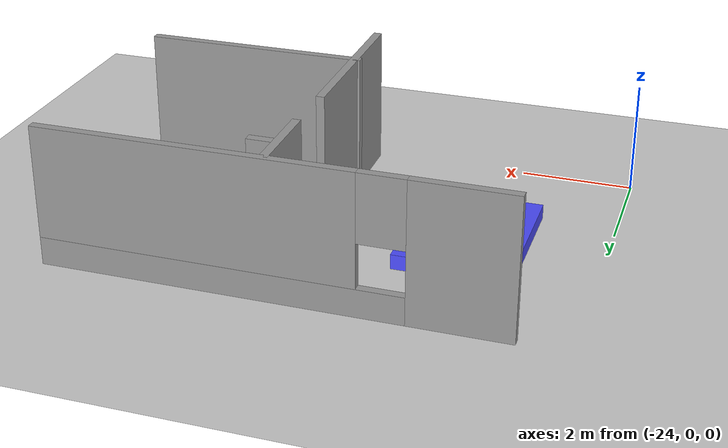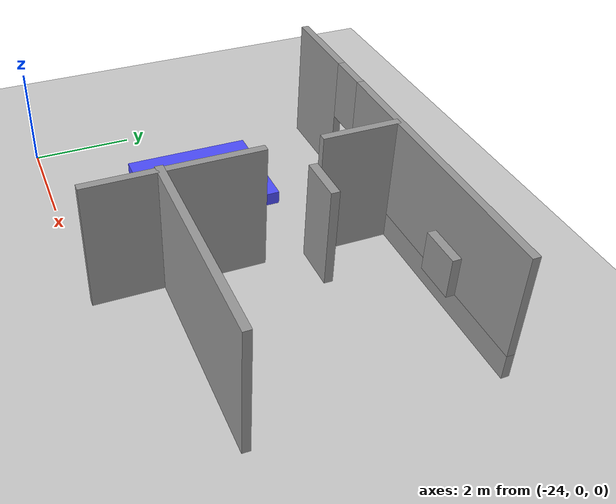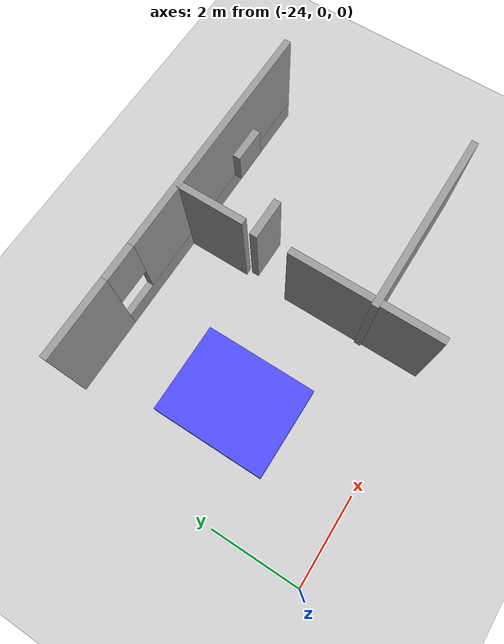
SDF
<sdf version="1.7">
 <world name="default">
  <model name="ground_plane">
   <static>1</static>
   <link name="link">
    <collision name="collision">
     <geometry><plane><normal>0 0 1</normal><size>100 100</size></plane></geometry>
     <surface><friction><ode><mu>100</mu><mu2>50</mu2></ode></friction></surface>
    </collision>
    <visual name="visual">
     <cast_shadows>0</cast_shadows>
     <geometry><plane><normal>0 0 1</normal><size>100 100</size></plane></geometry>
     <material>
      <script><uri>file://media/materials/scripts/gazebo.material</uri><name>Gazebo/Grey</name></script>
     </material>
    </visual>
   </link>
  </model>
  <model name="bed_master_bedroom">
   <link name="link">
    <pose>0.100094 0.123025 0 0 -0 0</pose>
    <inertial>
     <mass>1.44755</mass>
     <inertia>
      <ixx>0.803455</ixx>
      <ixy>0</ixy>
      <ixz>0</ixz>
      <iyy>0.510804</iyy>
      <iyz>0</iyz>
      <izz>1.29705</izz>
     </inertia>
    </inertial>
    <visual name="visual">
     <geometry><box><size>2.04039 2.56695 0.267057</size></box></geometry>
     <material>
      <script><name>Gazebo/Grey</name><uri>file://media/materials/scripts/gazebo.material</uri></script>
      <shader type="pixel"><normal_map>__default__</normal_map></shader>
      <ambient>0.3 0.3 1 0</ambient>
      <diffuse>0.7 0.7 0.7 1</diffuse>
      <specular>0.01 0.01 0.01 1</specular>
      <emissive>0 0 0 1</emissive>
     </material>
    </visual>
    <collision name="collision">
     <geometry><box><size>2.04039 2.56695 0.267057</size></box></geometry>
     <surface>
      <friction>
       <ode><mu>1</mu><mu2>1</mu2><fdir1>0 0 0</fdir1><slip1>0</slip1><slip2>0</slip2></ode>
       <torsional>
        <coefficient>1</coefficient>
        <patch_radius>0</patch_radius>
        <surface_radius>0</surface_radius>
        <use_patch_radius>1</use_patch_radius>
        <ode><slip>0</slip></ode>
       </torsional>
      </friction>
      <bounce><restitution_coefficient>0</restitution_coefficient><threshold>1e+06</threshold></bounce>
      <contact>
       <collide_without_contact>0</collide_without_contact>
       <collide_without_contact_bitmask>1</collide_without_contact_bitmask>
       <collide_bitmask>1</collide_bitmask>
       <ode>
        <soft_cfm>0</soft_cfm>
        <soft_erp>0.2</soft_erp>
        <kp>1e+13</kp>
        <kd>1</kd>
        <max_vel>0.01</max_vel>
        <min_depth>0</min_depth>
       </ode>
       <bullet>
        <split_impulse>1</split_impulse>
        <split_impulse_penetration_threshold>-0.01</split_impulse_penetration_threshold>
        <soft_cfm>0</soft_cfm>
        <soft_erp>0.2</soft_erp>
        <kp>1e+13</kp>
        <kd>1</kd>
       </bullet>
      </contact>
     </surface>
    </collision>
   </link>
   <static>0</static>
   <pose>-21.7782 2.86422 0.133528 0 -0 0</pose>
  </model>
  <model name="Building">
   <link name="Door_1">
    <pose>-6.95469 3.88732 0 0 -0 0</pose>
    <visual name="Door_1_Visual">
     <pose>0 0 1 0 -0 0</pose>
     <geometry><box><size>0.9 0.17 2</size></box></geometry>
     <material>
      <script><uri>file://media/materials/scripts/gazebo.material</uri><name>Gazebo/Grey</name></script>
      <shader type="pixel"/>
      <ambient>0.3 0.3 0.3 1</ambient>
      <diffuse>0.7 0.7 0.7 1</diffuse>
      <specular>0.01 0.01 0.01 1</specular>
      <emissive>0 0 0 1</emissive>
     </material>
    </visual>
    <collision name="Door_1_Collision">
     <pose>0 0 1 0 -0 0</pose>
     <geometry><box><size>0.9 0.17 2</size></box></geometry>
     <surface>
      <friction>
       <ode><mu>1</mu><mu2>1</mu2><fdir1>0 0 0</fdir1><slip1>0</slip1><slip2>0</slip2></ode>
       <torsional>
        <coefficient>1</coefficient>
        <patch_radius>0</patch_radius>
        <surface_radius>0</surface_radius>
        <use_patch_radius>1</use_patch_radius>
        <ode><slip>0</slip></ode>
       </torsional>
      </friction>
      <bounce><restitution_coefficient>0</restitution_coefficient><threshold>1e+06</threshold></bounce>
      <contact>
       <collide_without_contact>0</collide_without_contact>
       <collide_without_contact_bitmask>1</collide_without_contact_bitmask>
       <collide_bitmask>1</collide_bitmask>
       <ode>
        <soft_cfm>0</soft_cfm>
        <soft_erp>0.2</soft_erp>
        <kp>1e+13</kp>
        <kd>1</kd>
        <max_vel>0.01</max_vel>
        <min_depth>0</min_depth>
       </ode>
       <bullet>
        <split_impulse>1</split_impulse>
        <split_impulse_penetration_threshold>-0.01</split_impulse_penetration_threshold>
        <soft_cfm>0</soft_cfm>
        <soft_erp>0.2</soft_erp>
        <kp>1e+13</kp>
        <kd>1</kd>
       </bullet>
      </contact>
     </surface>
    </collision>
   </link>
   <link name="Wall_0">
    <pose>-7.4798 5.546 0 0 -0 0</pose>
    <visual name="Wall_0_Visual_0">
     <pose>-3.13088 0 1.25 0 -0 0</pose>
     <geometry><box><size>1.73823 0.15 2.5</size></box></geometry>
     <material>
      <script><uri>file://media/materials/scripts/gazebo.material</uri><name>Gazebo/Grey</name></script>
      <ambient>1 1 1 1</ambient>
      <shader type="pixel"/>
      <diffuse>0.7 0.7 0.7 1</diffuse>
      <specular>0.01 0.01 0.01 1</specular>
      <emissive>0 0 0 1</emissive>
     </material>
     <meta><layer>0</layer></meta>
    </visual>
    <visual name="Wall_0_Visual_1">
     <pose>0.869118 0 0.25 0 -0 0</pose>
     <geometry><box><size>6.26176 0.15 0.5</size></box></geometry>
     <material>
      <script><uri>file://media/materials/scripts/gazebo.material</uri><name>Gazebo/Grey</name></script>
      <ambient>1 1 1 1</ambient>
      <shader type="pixel"/>
      <diffuse>0.7 0.7 0.7 1</diffuse>
      <specular>0.01 0.01 0.01 1</specular>
      <emissive>0 0 0 1</emissive>
     </material>
     <meta><layer>0</layer></meta>
    </visual>
    <visual name="Wall_0_Visual_2">
     <pose>1.26912 0 1.5 0 -0 0</pose>
     <geometry><box><size>5.46176 0.15 2</size></box></geometry>
     <material>
      <script><uri>file://media/materials/scripts/gazebo.material</uri><name>Gazebo/Grey</name></script>
      <ambient>1 1 1 1</ambient>
      <shader type="pixel"/>
      <diffuse>0.7 0.7 0.7 1</diffuse>
      <specular>0.01 0.01 0.01 1</specular>
      <emissive>0 0 0 1</emissive>
     </material>
     <meta><layer>0</layer></meta>
    </visual>
    <visual name="Wall_0_Visual_3">
     <pose>-1.86176 0 1.9 0 -0 0</pose>
     <geometry><box><size>0.8 0.15 1.2</size></box></geometry>
     <material>
      <script><uri>file://media/materials/scripts/gazebo.material</uri><name>Gazebo/Grey</name></script>
      <ambient>1 1 1 1</ambient>
      <shader type="pixel"/>
      <diffuse>0.7 0.7 0.7 1</diffuse>
      <specular>0.01 0.01 0.01 1</specular>
      <emissive>0 0 0 1</emissive>
     </material>
     <meta><layer>0</layer></meta>
    </visual>
    <collision name="Wall_0_Collision_0">
     <pose>-3.13088 0 1.25 0 -0 0</pose>
     <geometry><box><size>1.73823 0.15 2.5</size></box></geometry>
     <surface>
      <friction>
       <ode><mu>1</mu><mu2>1</mu2><fdir1>0 0 0</fdir1><slip1>0</slip1><slip2>0</slip2></ode>
       <torsional>
        <coefficient>1</coefficient>
        <patch_radius>0</patch_radius>
        <surface_radius>0</surface_radius>
        <use_patch_radius>1</use_patch_radius>
        <ode><slip>0</slip></ode>
       </torsional>
      </friction>
      <bounce><restitution_coefficient>0</restitution_coefficient><threshold>1e+06</threshold></bounce>
      <contact>
       <collide_without_contact>0</collide_without_contact>
       <collide_without_contact_bitmask>1</collide_without_contact_bitmask>
       <collide_bitmask>1</collide_bitmask>
       <ode>
        <soft_cfm>0</soft_cfm>
        <soft_erp>0.2</soft_erp>
        <kp>1e+13</kp>
        <kd>1</kd>
        <max_vel>0.01</max_vel>
        <min_depth>0</min_depth>
       </ode>
       <bullet>
        <split_impulse>1</split_impulse>
        <split_impulse_penetration_threshold>-0.01</split_impulse_penetration_threshold>
        <soft_cfm>0</soft_cfm>
        <soft_erp>0.2</soft_erp>
        <kp>1e+13</kp>
        <kd>1</kd>
       </bullet>
      </contact>
     </surface>
    </collision>
    <collision name="Wall_0_Collision_1">
     <pose>0.869118 0 0.25 0 -0 0</pose>
     <geometry><box><size>6.26176 0.15 0.5</size></box></geometry>
     <surface>
      <friction>
       <ode><mu>1</mu><mu2>1</mu2><fdir1>0 0 0</fdir1><slip1>0</slip1><slip2>0</slip2></ode>
       <torsional>
        <coefficient>1</coefficient>
        <patch_radius>0</patch_radius>
        <surface_radius>0</surface_radius>
        <use_patch_radius>1</use_patch_radius>
        <ode><slip>0</slip></ode>
       </torsional>
      </friction>
      <bounce><restitution_coefficient>0</restitution_coefficient><threshold>1e+06</threshold></bounce>
      <contact>
       <collide_without_contact>0</collide_without_contact>
       <collide_without_contact_bitmask>1</collide_without_contact_bitmask>
       <collide_bitmask>1</collide_bitmask>
       <ode>
        <soft_cfm>0</soft_cfm>
        <soft_erp>0.2</soft_erp>
        <kp>1e+13</kp>
        <kd>1</kd>
        <max_vel>0.01</max_vel>
        <min_depth>0</min_depth>
       </ode>
       <bullet>
        <split_impulse>1</split_impulse>
        <split_impulse_penetration_threshold>-0.01</split_impulse_penetration_threshold>
        <soft_cfm>0</soft_cfm>
        <soft_erp>0.2</soft_erp>
        <kp>1e+13</kp>
        <kd>1</kd>
       </bullet>
      </contact>
     </surface>
    </collision>
    <collision name="Wall_0_Collision_2">
     <pose>1.26912 0 1.5 0 -0 0</pose>
     <geometry><box><size>5.46176 0.15 2</size></box></geometry>
     <surface>
      <friction>
       <ode><mu>1</mu><mu2>1</mu2><fdir1>0 0 0</fdir1><slip1>0</slip1><slip2>0</slip2></ode>
       <torsional>
        <coefficient>1</coefficient>
        <patch_radius>0</patch_radius>
        <surface_radius>0</surface_radius>
        <use_patch_radius>1</use_patch_radius>
        <ode><slip>0</slip></ode>
       </torsional>
      </friction>
      <bounce><restitution_coefficient>0</restitution_coefficient><threshold>1e+06</threshold></bounce>
      <contact>
       <collide_without_contact>0</collide_without_contact>
       <collide_without_contact_bitmask>1</collide_without_contact_bitmask>
       <collide_bitmask>1</collide_bitmask>
       <ode>
        <soft_cfm>0</soft_cfm>
        <soft_erp>0.2</soft_erp>
        <kp>1e+13</kp>
        <kd>1</kd>
        <max_vel>0.01</max_vel>
        <min_depth>0</min_depth>
       </ode>
       <bullet>
        <split_impulse>1</split_impulse>
        <split_impulse_penetration_threshold>-0.01</split_impulse_penetration_threshold>
        <soft_cfm>0</soft_cfm>
        <soft_erp>0.2</soft_erp>
        <kp>1e+13</kp>
        <kd>1</kd>
       </bullet>
      </contact>
     </surface>
    </collision>
    <collision name="Wall_0_Collision_3">
     <pose>-1.86176 0 1.9 0 -0 0</pose>
     <geometry><box><size>0.8 0.15 1.2</size></box></geometry>
     <surface>
      <friction>
       <ode><mu>1</mu><mu2>1</mu2><fdir1>0 0 0</fdir1><slip1>0</slip1><slip2>0</slip2></ode>
       <torsional>
        <coefficient>1</coefficient>
        <patch_radius>0</patch_radius>
        <surface_radius>0</surface_radius>
        <use_patch_radius>1</use_patch_radius>
        <ode><slip>0</slip></ode>
       </torsional>
      </friction>
      <bounce><restitution_coefficient>0</restitution_coefficient><threshold>1e+06</threshold></bounce>
      <contact>
       <collide_without_contact>0</collide_without_contact>
       <collide_without_contact_bitmask>1</collide_without_contact_bitmask>
       <collide_bitmask>1</collide_bitmask>
       <ode>
        <soft_cfm>0</soft_cfm>
        <soft_erp>0.2</soft_erp>
        <kp>1e+13</kp>
        <kd>1</kd>
        <max_vel>0.01</max_vel>
        <min_depth>0</min_depth>
       </ode>
       <bullet>
        <split_impulse>1</split_impulse>
        <split_impulse_penetration_threshold>-0.01</split_impulse_penetration_threshold>
        <soft_cfm>0</soft_cfm>
        <soft_erp>0.2</soft_erp>
        <kp>1e+13</kp>
        <kd>1</kd>
       </bullet>
      </contact>
     </surface>
    </collision>
   </link>
   <link name="Wall_10">
    <pose>-7.44016 4.79009 0 0 0 -1.5708</pose>
    <visual name="Wall_10_Visual">
     <pose>0 0 1.25 0 -0 0</pose>
     <geometry><box><size>1.5 0.15 2.5</size></box></geometry>
     <material>
      <script><uri>file://media/materials/scripts/gazebo.material</uri><name>Gazebo/Grey</name></script>
      <ambient>1 1 1 1</ambient>
      <shader type="pixel"/>
      <diffuse>0.7 0.7 0.7 1</diffuse>
      <specular>0.01 0.01 0.01 1</specular>
      <emissive>0 0 0 1</emissive>
     </material>
     <meta><layer>0</layer></meta>
    </visual>
    <collision name="Wall_10_Collision">
     <pose>0 0 1.25 0 -0 0</pose>
     <geometry><box><size>1.5 0.15 2.5</size></box></geometry>
     <surface>
      <friction>
       <ode><mu>1</mu><mu2>1</mu2><fdir1>0 0 0</fdir1><slip1>0</slip1><slip2>0</slip2></ode>
       <torsional>
        <coefficient>1</coefficient>
        <patch_radius>0</patch_radius>
        <surface_radius>0</surface_radius>
        <use_patch_radius>1</use_patch_radius>
        <ode><slip>0</slip></ode>
       </torsional>
      </friction>
      <bounce><restitution_coefficient>0</restitution_coefficient><threshold>1e+06</threshold></bounce>
      <contact>
       <collide_without_contact>0</collide_without_contact>
       <collide_without_contact_bitmask>1</collide_without_contact_bitmask>
       <collide_bitmask>1</collide_bitmask>
       <ode>
        <soft_cfm>0</soft_cfm>
        <soft_erp>0.2</soft_erp>
        <kp>1e+13</kp>
        <kd>1</kd>
        <max_vel>0.01</max_vel>
        <min_depth>0</min_depth>
       </ode>
       <bullet>
        <split_impulse>1</split_impulse>
        <split_impulse_penetration_threshold>-0.01</split_impulse_penetration_threshold>
        <soft_cfm>0</soft_cfm>
        <soft_erp>0.2</soft_erp>
        <kp>1e+13</kp>
        <kd>1</kd>
       </bullet>
      </contact>
     </surface>
    </collision>
   </link>
   <link name="Wall_12">
    <pose>-7.48061 1.40684 0 0 0 -1.5708</pose>
    <visual name="Wall_12_Visual">
     <pose>0 0 1.25 0 -0 0</pose>
     <geometry><box><size>3.25 0.15 2.5</size></box></geometry>
     <material>
      <script><uri>file://media/materials/scripts/gazebo.material</uri><name>Gazebo/Grey</name></script>
      <ambient>1 1 1 1</ambient>
      <shader type="pixel"/>
      <diffuse>0.7 0.7 0.7 1</diffuse>
      <specular>0.01 0.01 0.01 1</specular>
      <emissive>0 0 0 1</emissive>
     </material>
     <meta><layer>0</layer></meta>
    </visual>
    <collision name="Wall_12_Collision">
     <pose>0 0 1.25 0 -0 0</pose>
     <geometry><box><size>3.25 0.15 2.5</size></box></geometry>
     <surface>
      <friction>
       <ode><mu>1</mu><mu2>1</mu2><fdir1>0 0 0</fdir1><slip1>0</slip1><slip2>0</slip2></ode>
       <torsional>
        <coefficient>1</coefficient>
        <patch_radius>0</patch_radius>
        <surface_radius>0</surface_radius>
        <use_patch_radius>1</use_patch_radius>
        <ode><slip>0</slip></ode>
       </torsional>
      </friction>
      <bounce><restitution_coefficient>0</restitution_coefficient><threshold>1e+06</threshold></bounce>
      <contact>
       <collide_without_contact>0</collide_without_contact>
       <collide_without_contact_bitmask>1</collide_without_contact_bitmask>
       <collide_bitmask>1</collide_bitmask>
       <ode>
        <soft_cfm>0</soft_cfm>
        <soft_erp>0.2</soft_erp>
        <kp>1e+13</kp>
        <kd>1</kd>
        <max_vel>0.01</max_vel>
        <min_depth>0</min_depth>
       </ode>
       <bullet>
        <split_impulse>1</split_impulse>
        <split_impulse_penetration_threshold>-0.01</split_impulse_penetration_threshold>
        <soft_cfm>0</soft_cfm>
        <soft_erp>0.2</soft_erp>
        <kp>1e+13</kp>
        <kd>1</kd>
       </bullet>
      </contact>
     </surface>
    </collision>
   </link>
   <link name="Wall_14">
    <pose>-5.59607 1.1768 0 0 -0 0</pose>
    <visual name="Wall_14_Visual">
     <pose>0 0 1.25 0 -0 0</pose>
     <geometry><box><size>4 0.15 2.5</size></box></geometry>
     <material>
      <script><uri>file://media/materials/scripts/gazebo.material</uri><name>Gazebo/Grey</name></script>
      <ambient>1 1 1 1</ambient>
      <shader type="pixel"/>
      <diffuse>0.7 0.7 0.7 1</diffuse>
      <specular>0.01 0.01 0.01 1</specular>
      <emissive>0 0 0 1</emissive>
     </material>
     <meta><layer>0</layer></meta>
    </visual>
    <collision name="Wall_14_Collision">
     <pose>0 0 1.25 0 -0 0</pose>
     <geometry><box><size>4 0.15 2.5</size></box></geometry>
     <surface>
      <friction>
       <ode><mu>1</mu><mu2>1</mu2><fdir1>0 0 0</fdir1><slip1>0</slip1><slip2>0</slip2></ode>
       <torsional>
        <coefficient>1</coefficient>
        <patch_radius>0</patch_radius>
        <surface_radius>0</surface_radius>
        <use_patch_radius>1</use_patch_radius>
        <ode><slip>0</slip></ode>
       </torsional>
      </friction>
      <bounce><restitution_coefficient>0</restitution_coefficient><threshold>1e+06</threshold></bounce>
      <contact>
       <collide_without_contact>0</collide_without_contact>
       <collide_without_contact_bitmask>1</collide_without_contact_bitmask>
       <collide_bitmask>1</collide_bitmask>
       <ode>
        <soft_cfm>0</soft_cfm>
        <soft_erp>0.2</soft_erp>
        <kp>1e+13</kp>
        <kd>1</kd>
        <max_vel>0.01</max_vel>
        <min_depth>0</min_depth>
       </ode>
       <bullet>
        <split_impulse>1</split_impulse>
        <split_impulse_penetration_threshold>-0.01</split_impulse_penetration_threshold>
        <soft_cfm>0</soft_cfm>
        <soft_erp>0.2</soft_erp>
        <kp>1e+13</kp>
        <kd>1</kd>
       </bullet>
      </contact>
     </surface>
    </collision>
   </link>
   <link name="Window_0">
    <pose>-5.37692 5.38418 0.5 0 -0 0</pose>
    <visual name="Window_0_Visual">
     <pose>0 0 0.4 0 -0 0</pose>
     <geometry><box><size>0.8 0.17 0.8</size></box></geometry>
     <material>
      <script><uri>file://media/materials/scripts/gazebo.material</uri><name>Gazebo/Grey</name></script>
      <shader type="pixel"/>
      <ambient>0.3 0.3 0.3 1</ambient>
      <diffuse>0.7 0.7 0.7 1</diffuse>
      <specular>0.01 0.01 0.01 1</specular>
      <emissive>0 0 0 1</emissive>
     </material>
    </visual>
    <collision name="Window_0_Collision">
     <pose>0 0 0.4 0 -0 0</pose>
     <geometry><box><size>0.8 0.17 0.8</size></box></geometry>
     <surface>
      <friction>
       <ode><mu>1</mu><mu2>1</mu2><fdir1>0 0 0</fdir1><slip1>0</slip1><slip2>0</slip2></ode>
       <torsional>
        <coefficient>1</coefficient>
        <patch_radius>0</patch_radius>
        <surface_radius>0</surface_radius>
        <use_patch_radius>1</use_patch_radius>
        <ode><slip>0</slip></ode>
       </torsional>
      </friction>
      <bounce><restitution_coefficient>0</restitution_coefficient><threshold>1e+06</threshold></bounce>
      <contact>
       <collide_without_contact>0</collide_without_contact>
       <collide_without_contact_bitmask>1</collide_without_contact_bitmask>
       <collide_bitmask>1</collide_bitmask>
       <ode>
        <soft_cfm>0</soft_cfm>
        <soft_erp>0.2</soft_erp>
        <kp>1e+13</kp>
        <kd>1</kd>
        <max_vel>0.01</max_vel>
        <min_depth>0</min_depth>
       </ode>
       <bullet>
        <split_impulse>1</split_impulse>
        <split_impulse_penetration_threshold>-0.01</split_impulse_penetration_threshold>
        <soft_cfm>0</soft_cfm>
        <soft_erp>0.2</soft_erp>
        <kp>1e+13</kp>
        <kd>1</kd>
       </bullet>
      </contact>
     </surface>
    </collision>
   </link>
   <static>1</static>
   <pose>-11.6425 0.2878 0 0 -0 0</pose>
  </model>
 </world>
</sdf>
